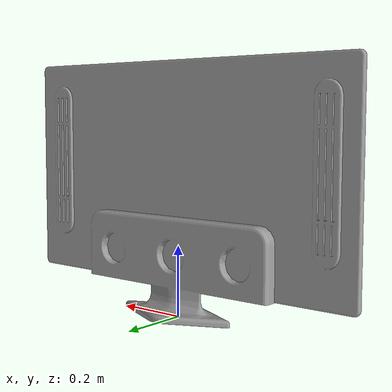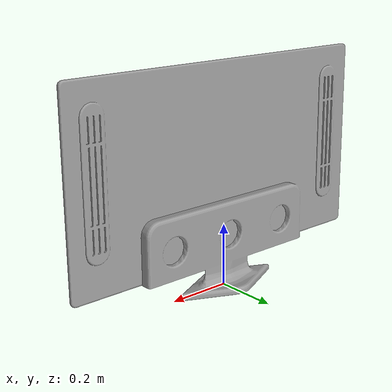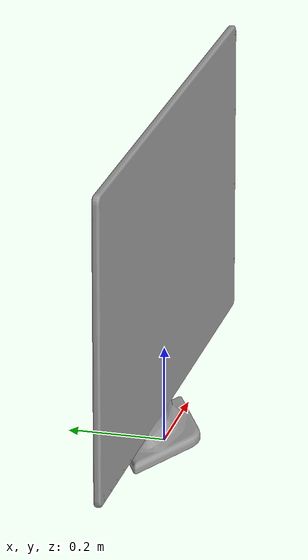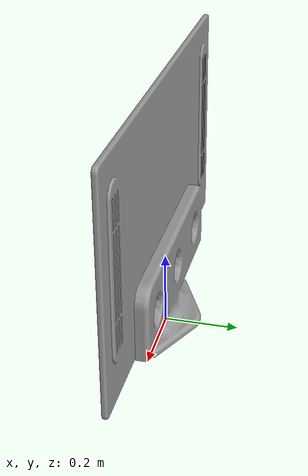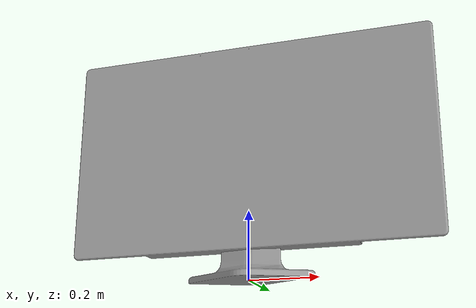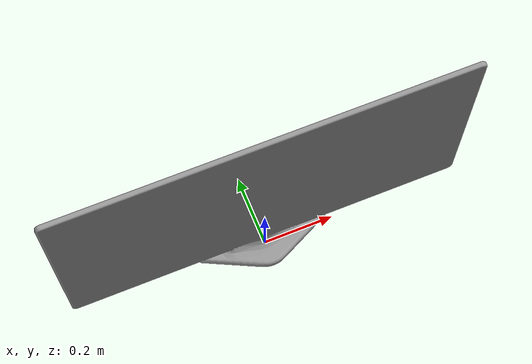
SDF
<?xml version='1.0'?>
<sdf version='1.6'>
  <model name='rai_tv'>
    <link name='link_3'>
      <pose frame=''>0 0 0 0 -0 0</pose>
      <visual name='visual'>
        <pose frame=''>0 0 0.4 1.57 -0 0</pose>
        <geometry>
          <mesh>
            <uri>model://rai_tv/meshes/rai_tv.STL</uri>
            <scale>1 1 1</scale>
          </mesh>
        </geometry>
        <material>
          <lighting>1</lighting>
          <script>
            <uri>file://media/materials/scripts/gazebo.material</uri>
            <name>Gazebo/Grey</name>
          </script>
          <ambient>0.1 0.1 0.1 0.1</ambient>
          <diffuse>0.3 0.3 0.3 0.5</diffuse>
          <specular>0.01 0.01 0.01 1</specular>
          <emissive>0 0 0 0.5</emissive>
          <shader type='vertex'>
            <normal_map>__default__</normal_map>
          </shader>
        </material>
        <cast_shadows>1</cast_shadows>
        <transparency>0</transparency>
      </visual>
      <collision name='collision'>
        <pose frame=''>0 0.01 0.36 0 -0 0</pose>
        <geometry>
          <box>
            <size>1.1 0.05 0.71</size>
          </box>
        </geometry>
      </collision>
    </link>
    <static>1</static>
    <allow_auto_disable>1</allow_auto_disable>
  </model>
</sdf>
